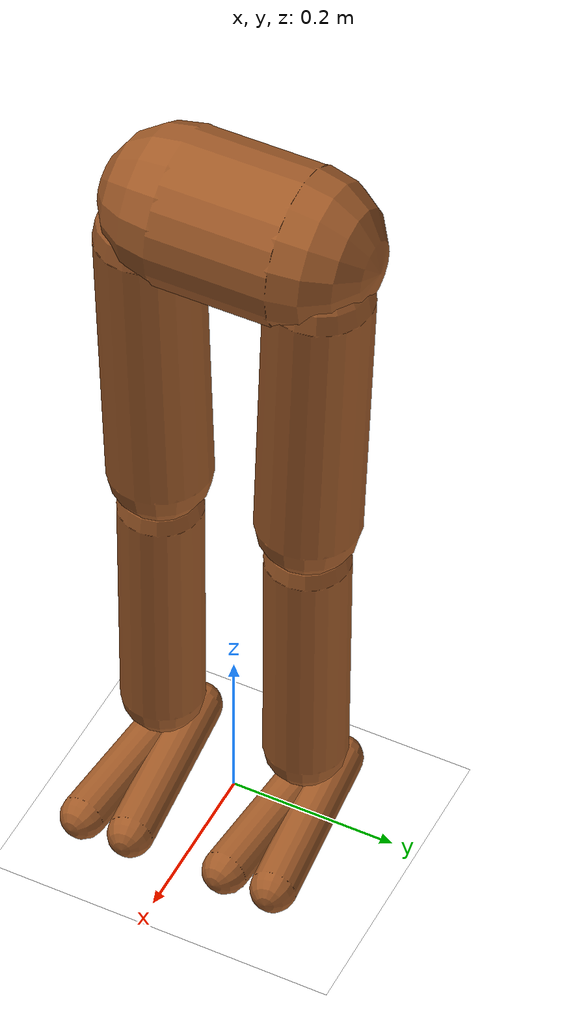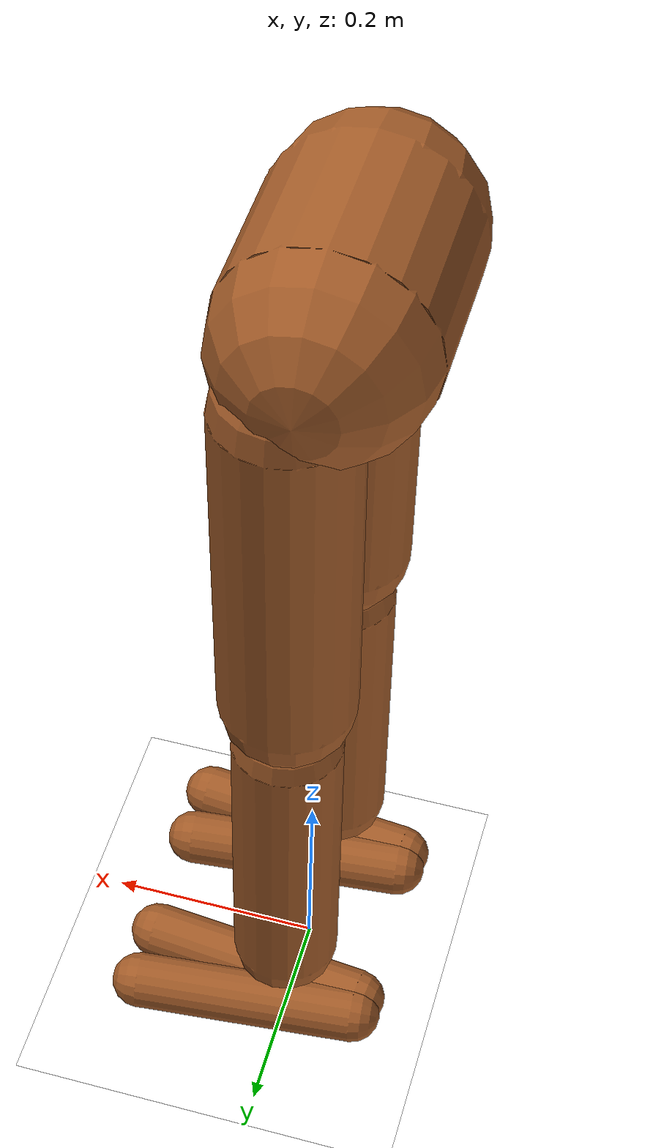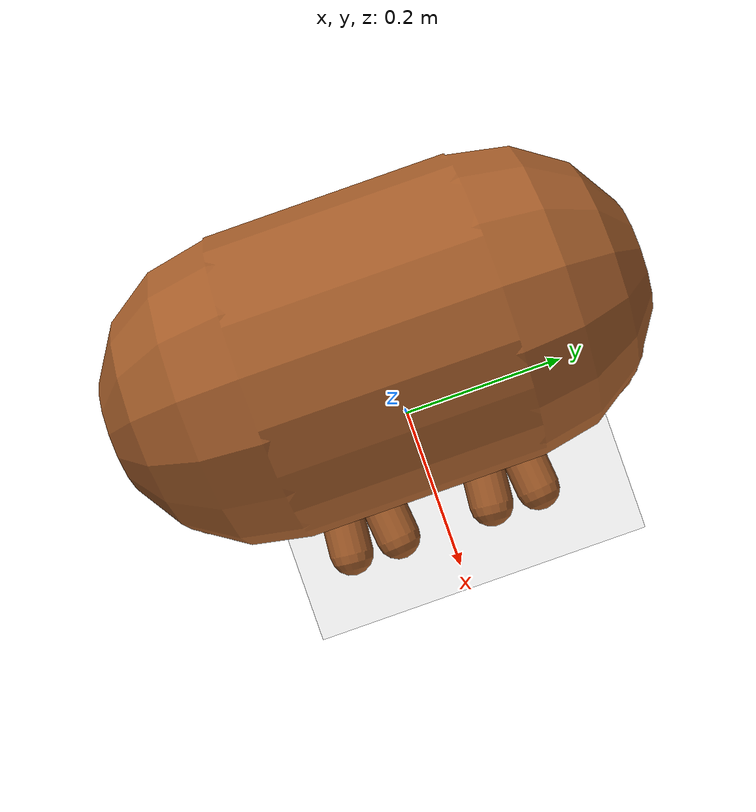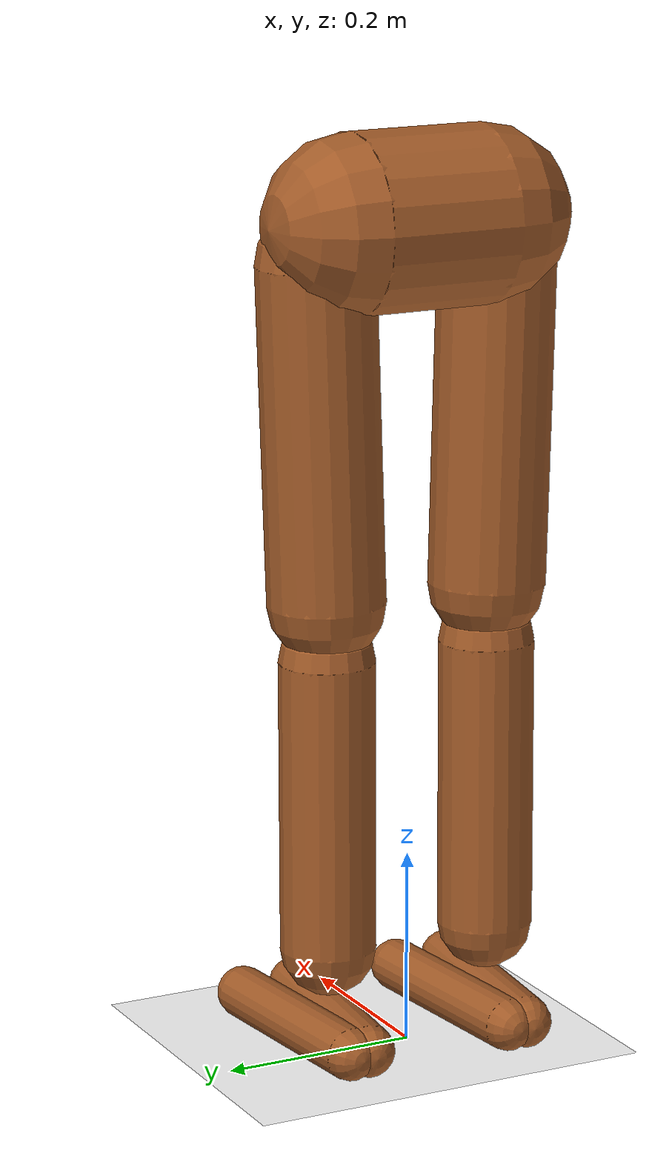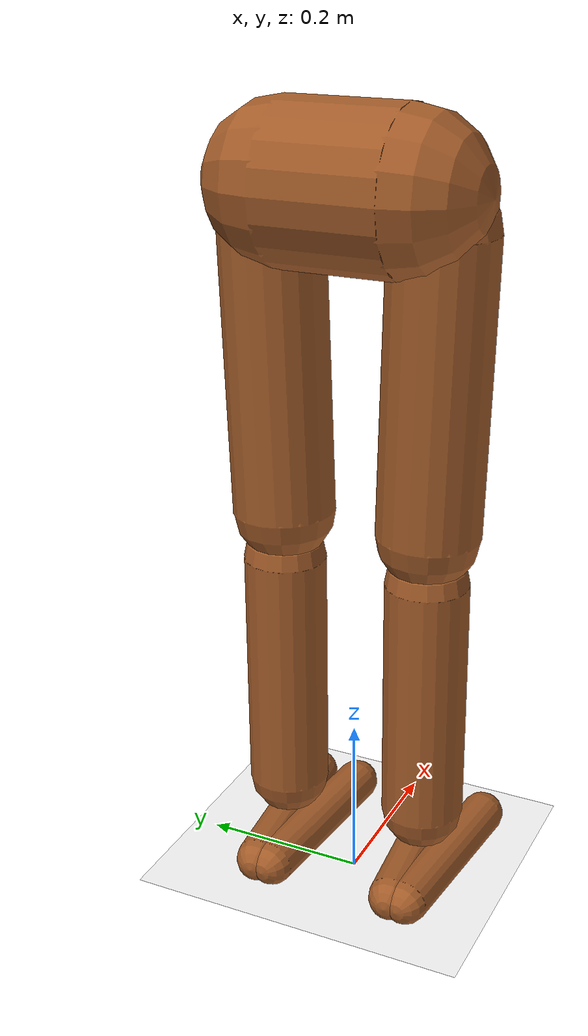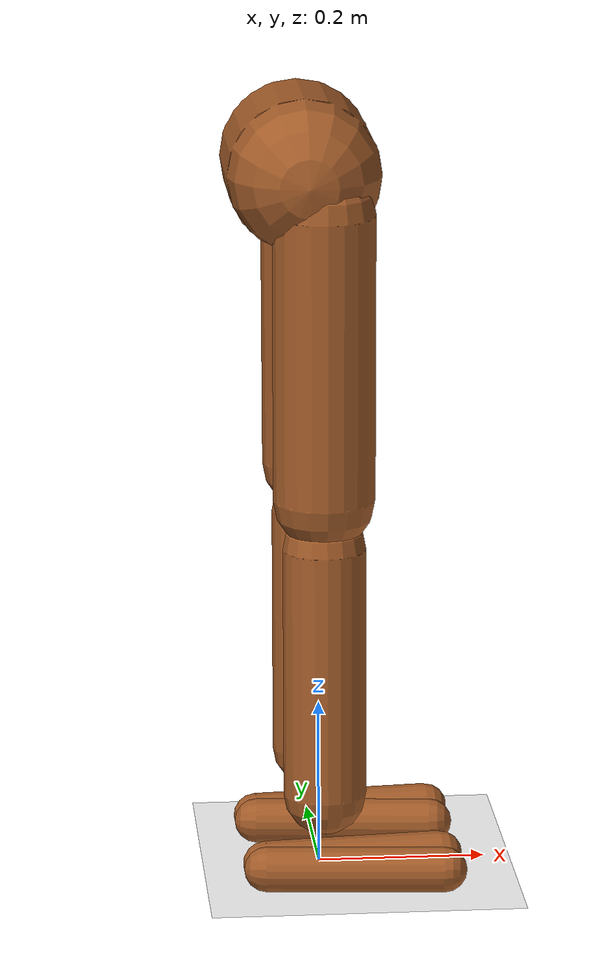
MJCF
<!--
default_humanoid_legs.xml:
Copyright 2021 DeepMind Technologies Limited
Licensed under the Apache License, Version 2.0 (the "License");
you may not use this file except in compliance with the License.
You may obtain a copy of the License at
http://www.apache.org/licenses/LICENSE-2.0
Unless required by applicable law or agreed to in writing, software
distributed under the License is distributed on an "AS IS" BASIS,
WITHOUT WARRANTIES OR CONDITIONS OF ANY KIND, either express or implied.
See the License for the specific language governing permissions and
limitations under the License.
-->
<mujoco model="humanoid feetonly flat terrain scene">
  <include file="default_humanoid_legs.xml"/>

  <statistic center="0 0 0.1" extent="0.8" meansize="0.04"/>

  <visual>
    <headlight diffuse=".8 .8 .8" ambient=".2 .2 .2" specular="1 1 1"/>
    <rgba force="1 0 0 1"/>
    <global azimuth="120" elevation="-20"/>
    <map force="0.01"/>
    <scale forcewidth="0.3" contactwidth="0.5" contactheight="0.2"/>
    <quality shadowsize="8192"/>
  </visual>

  <asset>
    <texture type="skybox" builtin="gradient" rgb1="1 1 1" rgb2="1 1 1" width="800" height="800"/>
    <texture type="2d" name="groundplane" builtin="checker" mark="edge" rgb1="1 1 1" rgb2="1 1 1" markrgb="0 0 0"
      width="300" height="300"/>
    <material name="groundplane" texture="groundplane" texuniform="true" texrepeat="5 5" reflectance="0"/>
  </asset>

  <worldbody>
    <geom name="floor" size="0 0 0.01" type="plane" material="groundplane" contype="1" conaffinity="0" priority="1"
      friction="0.6" condim="3"/>
  </worldbody>

  <keyframe>
  <!-- Athletic stance with bent knees -->
  <key name="home" qpos='0.00175017 1.06678e-15 0.933999 0.999999 -4.53453e-16 -0.00152461 -6.88418e-16 -0.07219 -0.00415263 -0.291345 -0.963913 -0.673198 0.0299855 -0.07219 -0.00415263 -0.291345 -0.963913 -0.673198 0.0299855'
                                   ctrl="-0.07    -0.005  -0.3  -0.87  -0.57  0
                                    -0.07   -0.005  -0.3  -0.87  -0.57  0"
  />
</keyframe>
</mujoco>

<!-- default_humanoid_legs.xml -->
<mujoco model="Humanoid">

  <option iterations="3" ls_iterations="5" timestep="0.004" integrator="Euler">
    <flag eulerdamp="disable"/>
  </option>

  <asset>
    <texture type="skybox" builtin="gradient" rgb1=".3 .5 .7" rgb2="0 0 0" width="32" height="512"/>
    <texture name="body" type="cube" builtin="flat" mark="cross" width="128" height="128" rgb1="0.8 0.6 0.4" rgb2="0.8 0.6 0.4" markrgb="1 1 1"/>
    <material name="body" texture="body" texuniform="true" rgba="0.8 0.6 .4 1"/>
    <texture name="grid" type="2d" builtin="checker" width="512" height="512" rgb1=".1 .2 .3" rgb2=".2 .3 .4"/>
    <material name="grid" texture="grid" texrepeat="1 1" texuniform="true" reflectance=".2"/>
  </asset>

  <default>
    <default class="body">
    <site size="0.01" rgba="1 0 0 1"/>

      <!-- geoms -->
      <geom type="capsule" contype="0" conaffinity="0" condim="1" friction="0.7" solimp=".9 .99 .003" solref=".015 1"  material="body" group="1"/>
      <default class="thigh">
        <geom size=".06"/>
      </default>
      <default class="shin">
        <geom fromto="0 0 0 0 0 -.3"  size=".049"/>
      </default>
      <default class="foot">
        <geom size=".027" contype="0" conaffinity="1"/>
        <default class="foot1">
          <geom fromto="-.07 -.01 0 .14 -.03 0"/>
        </default>
        <default class="foot2">
          <geom fromto="-.07 .01 0 .14  .03 0"/>
        </default>
      </default>
       <default class="arm_upper">
        <geom size=".04"/>
      </default>
      <default class="arm_lower">
        <geom size=".031"/>
      </default>
      <default class="hand">
        <geom type="sphere" size=".04"/>
      </default>

      <!-- joints -->
      <joint type="hinge" damping="0.3" stiffness="1" frictionloss="0.1" armature="0.01" solimplimit="0 .99 .01"/>
      <position kp="75" inheritrange="1"/>
        <default class="HR">
          <joint range="-30 10" />
        </default>
        <default class="HAA">
          <joint range="-60 35"/>
        </default>
        <default class="HFE">
          <joint axis="0 1 0" range="-150 20"/>
        </default>
      <default class="KFE">
        <joint pos="0 0 .02" axis="0 -1 0" range="-160 2" />
      </default>
      <default class="ankle">
        <joint range="-50 50" />
        <default class="FFE">
          <joint pos="0 0 .08" axis="0 1 0" stiffness="6" />
        </default>
        <default class="FAA">
          <joint pos="0 0 .04" stiffness="3" />
        </default>
      </default>
    </default>
  </default>

  <worldbody>
    <light name="spotlight" mode="targetbodycom" target="torso" diffuse=".8 .8 .8" specular="0.3 0.3 0.3" pos="0 -6 4" cutoff="30"/>
    <light name="top" pos="0 0 2" mode="trackcom"/>
    <body name="torso" pos="0 0 1.02" childclass="body">
      <camera name="back" pos="-3 0 1" xyaxes="0 -1 0 1 0 2" mode="trackcom"/>
      <camera name="side" pos="0 -3 1" xyaxes="1 0 0 0 1 2" mode="trackcom"/>
      <freejoint name="root"/>
      <site name="imu" pos="0 0 -.09"/>
        <body name="pelvis" pos="0 0 -.165">
          <geom name="butt" fromto="-.02 -.07 0 -.02 .07 0" size=".09"/>
          <body name="thigh_right" pos="0 -.1 -.04">
            <joint name="LR_HR" axis="1 0 0" class="HR"/>
            <joint name="LR_HAA" axis="0 0 1" class="HAA"/>
            <joint name="LR_HFE" class="HFE"/>
            <geom name="thigh_right" fromto="0 0 0 0 .01 -.34" class="thigh"/>
            <body name="shin_right" pos="0 .01 -.4">
              <joint name="LR_KFE" class="KFE"/>
              <geom name="shin_right" class="shin"/>
              <body name="foot_right" pos="0 0 -.39">
                <joint name="LR_FFE" class="FFE"/>
                <joint name="LR_FAA" class="FAA" axis="1 0 .5"/>
                <geom name="foot1_right" class="foot1"/>
                <geom name="foot2_right" class="foot2"/>
                 <site name="r_foot" pos="0 0 -0.014" rgba="1 0 0 1"/>
              </body>
            </body>
          </body>
          <body name="thigh_left" pos="0 .1 -.04">
            <joint name="LL_HR" axis="-1 0 0" class="HR"/>
            <joint name="LL_HAA" axis="0 0 -1" class="HAA"/>
            <joint name="LL_HFE" class="HFE"/>
            <geom name="thigh_left" fromto="0 0 0 0 -.01 -.34" class="thigh"/>
            <body name="shin_left" pos="0 -.01 -.4">
              <joint name="LL_KFE" class="KFE"/>
              <geom name="shin_left" fromto="0 0 0 0 0 -.3" class="shin"/>
              <body name="foot_left" pos="0 0 -.39">
                <joint name="LL_FFE" class="FFE"/>
                <joint name="LL_FAA" class="FAA" axis="-1 0 -.5"/>

                <geom name="foot1_left" class="foot1"/>
                <geom name="foot2_left" class="foot2"/>
                <site name="l_foot" pos="0 0 -.014" rgba="1 0 0 1"/>
              </body>
            </body>
          </body>

        </body>

    </body>
  </worldbody>

  <actuator>
    <position class="HR" name="LL_HR" joint="LL_HR" />
    <position class="HAA" name="LL_HAA" joint="LL_HAA" />
    <position class="HFE" name="LL_HFE" joint="LL_HFE" />
    <position class="KFE" name="LL_KFE" joint="LL_KFE" />
    <position class="FFE" name="LL_FFE" joint="LL_FFE" />
    <position class="FAA" name="LL_FAA" joint="LL_FAA" />

    <position class="HR" name="LR_HR" joint="LR_HR" />
    <position class="HAA" name="LR_HAA" joint="LR_HAA" />
    <position class="HFE" name="LR_HFE" joint="LR_HFE" />
    <position class="KFE" name="LR_KFE" joint="LR_KFE" />
    <position class="FFE" name="LR_FFE" joint="LR_FFE" />
    <position class="FAA" name="LR_FAA" joint="LR_FAA" />
  </actuator>

  <sensor>
    <gyro site="imu" name="gyro"/>
    <velocimeter site="imu" name="local_linvel"/>
    <accelerometer site="imu" name="accelerometer"/>
    <framezaxis objtype="site" objname="imu" name="upvector"/>
    <framexaxis objtype="site" objname="imu" name="forwardvector"/>
    <framelinvel objtype="site" objname="imu" name="global_linvel"/>
    <frameangvel objtype="site" objname="imu" name="global_angvel"/>
    <framepos objtype="site" objname="imu" name="position"/>
    <framequat objtype="site" objname="imu" name="orientation"/>
    <framelinvel objtype="site" objname="l_foot" name="l_foot_global_linvel"/>
    <framelinvel objtype="site" objname="r_foot" name="r_foot_global_linvel"/>
    <framexaxis objtype="site" objname="l_foot" name="l_foot_upvector"/>
    <framexaxis objtype="site" objname="r_foot" name="r_foot_upvector"/>
    <framepos objtype="site" objname="l_foot" name="l_foot_pos"/>
    <framepos objtype="site" objname="r_foot" name="r_foot_pos"/>
  </sensor>

</mujoco>
